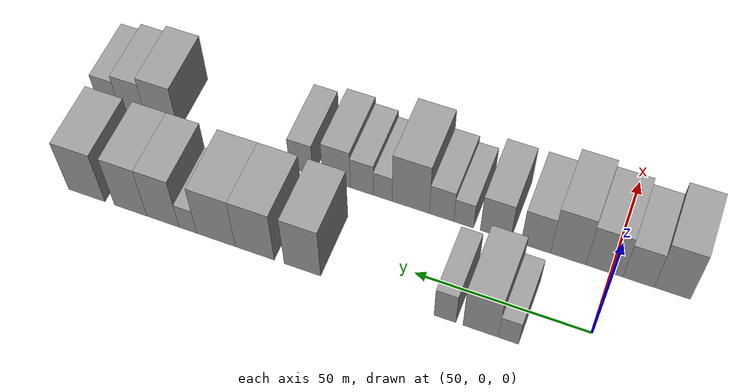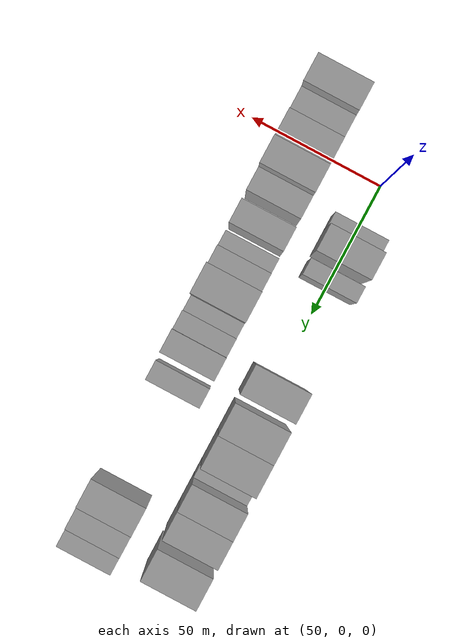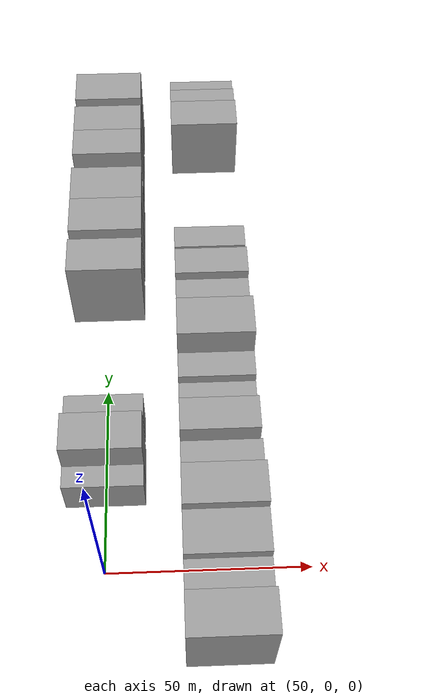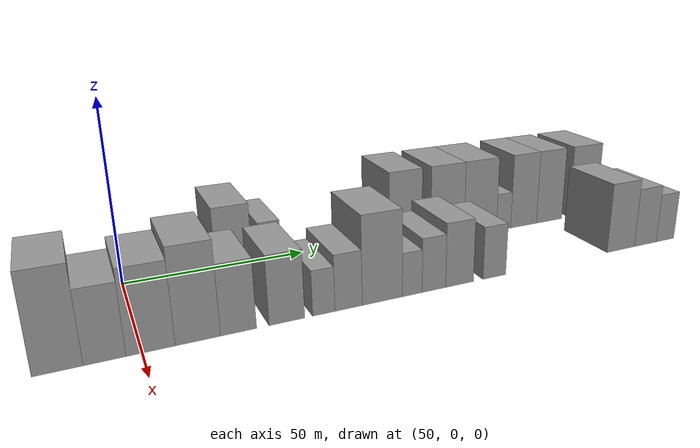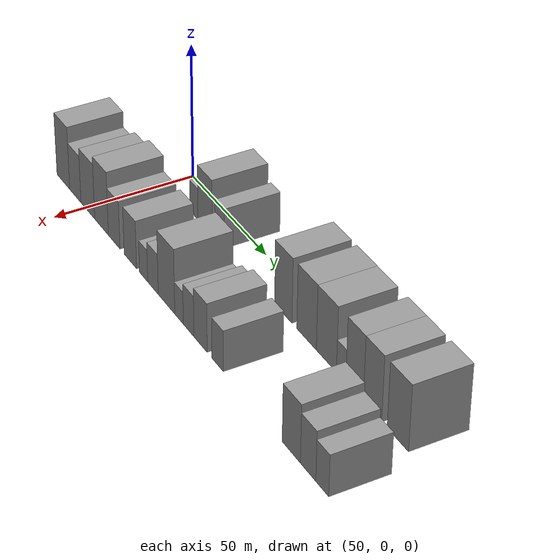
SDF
<sdf version="1.6">
 <world name="default">
  <model name="building_23">
   <static>1</static>
   <pose>50.0000 20.0365 0 0.000000 0.000000 0.000000</pose>
   <link name="link">
    <pose>0 0 6.00 0 0 0</pose>
    <collision name="collision"><geometry><box><size>20.0000 5.6139 12.0000</size></box></geometry></collision>
    <visual name="visual">
     <cast_shadows>0</cast_shadows>
     <geometry><box><size>20.0000 5.6139 12.0000</size></box></geometry>
     <material>
      <script>
       <uri>model://grey_wall/materials/scripts</uri>
       <uri>model://grey_wall/materials/textures</uri>
       <name>vrc/grey_wall</name>
      </script>
     </material>
    </visual>
   </link>
  </model>
  <model name="building_24">
   <static>1</static>
   <pose>50.0000 27.7827 0 0.000000 0.000000 0.000000</pose>
   <link name="link">
    <pose>0 0 10.50 0 0 0</pose>
    <collision name="collision"><geometry><box><size>20.0000 9.8785 21.0000</size></box></geometry></collision>
    <visual name="visual">
     <cast_shadows>0</cast_shadows>
     <geometry><box><size>20.0000 9.8785 21.0000</size></box></geometry>
     <material>
      <script>
       <uri>model://grey_wall/materials/scripts</uri>
       <uri>model://grey_wall/materials/textures</uri>
       <name>vrc/grey_wall</name>
      </script>
     </material>
    </visual>
   </link>
  </model>
  <model name="building_25">
   <static>1</static>
   <pose>50.0000 37.7864 0 0.000000 0.000000 0.000000</pose>
   <link name="link">
    <pose>0 0 7.50 0 0 0</pose>
    <collision name="collision"><geometry><box><size>20.0000 6.1289 15.0000</size></box></geometry></collision>
    <visual name="visual">
     <cast_shadows>0</cast_shadows>
     <geometry><box><size>20.0000 6.1289 15.0000</size></box></geometry>
     <material>
      <script>
       <uri>model://grey_wall/materials/scripts</uri>
       <uri>model://grey_wall/materials/textures</uri>
       <name>vrc/grey_wall</name>
      </script>
     </material>
    </visual>
   </link>
  </model>
  <model name="building_26">
   <static>1</static>
   <pose>50.0000 79.0097 0 0.000000 0.000000 0.000000</pose>
   <link name="link">
    <pose>0 0 12.00 0 0 0</pose>
    <collision name="collision"><geometry><box><size>20.0000 10.7726 24.0000</size></box></geometry></collision>
    <visual name="visual">
     <cast_shadows>0</cast_shadows>
     <geometry><box><size>20.0000 10.7726 24.0000</size></box></geometry>
     <material>
      <script>
       <uri>model://grey_wall/materials/scripts</uri>
       <uri>model://grey_wall/materials/textures</uri>
       <name>vrc/grey_wall</name>
      </script>
     </material>
    </visual>
   </link>
  </model>
  <model name="building_27">
   <static>1</static>
   <pose>50.0000 93.2455 0 0.000000 0.000000 0.000000</pose>
   <link name="link">
    <pose>0 0 12.00 0 0 0</pose>
    <collision name="collision"><geometry><box><size>20.0000 11.6992 24.0000</size></box></geometry></collision>
    <visual name="visual">
     <cast_shadows>0</cast_shadows>
     <geometry><box><size>20.0000 11.6992 24.0000</size></box></geometry>
     <material>
      <script>
       <uri>model://grey_wall/materials/scripts</uri>
       <uri>model://grey_wall/materials/textures</uri>
       <name>vrc/grey_wall</name>
      </script>
     </material>
    </visual>
   </link>
  </model>
  <model name="building_28">
   <static>1</static>
   <pose>50.0000 105.0080 0 0.000000 0.000000 0.000000</pose>
   <link name="link">
    <pose>0 0 12.00 0 0 0</pose>
    <collision name="collision"><geometry><box><size>20.0000 11.8258 24.0000</size></box></geometry></collision>
    <visual name="visual">
     <cast_shadows>0</cast_shadows>
     <geometry><box><size>20.0000 11.8258 24.0000</size></box></geometry>
     <material>
      <script>
       <uri>model://grey_wall/materials/scripts</uri>
       <uri>model://grey_wall/materials/textures</uri>
       <name>vrc/grey_wall</name>
      </script>
     </material>
    </visual>
   </link>
  </model>
  <model name="building_29">
   <static>1</static>
   <pose>50.0000 113.6295 0 0.000000 0.000000 0.000000</pose>
   <link name="link">
    <pose>0 0 6.00 0 0 0</pose>
    <collision name="collision"><geometry><box><size>20.0000 5.4173 12.0000</size></box></geometry></collision>
    <visual name="visual">
     <cast_shadows>0</cast_shadows>
     <geometry><box><size>20.0000 5.4173 12.0000</size></box></geometry>
     <material>
      <script>
       <uri>model://grey_wall/materials/scripts</uri>
       <uri>model://grey_wall/materials/textures</uri>
       <name>vrc/grey_wall</name>
      </script>
     </material>
    </visual>
   </link>
  </model>
  <model name="building_30">
   <static>1</static>
   <pose>50.0000 121.3098 0 0.000000 0.000000 0.000000</pose>
   <link name="link">
    <pose>0 0 12.00 0 0 0</pose>
    <collision name="collision"><geometry><box><size>20.0000 9.9432 24.0000</size></box></geometry></collision>
    <visual name="visual">
     <cast_shadows>0</cast_shadows>
     <geometry><box><size>20.0000 9.9432 24.0000</size></box></geometry>
     <material>
      <script>
       <uri>model://grey_wall/materials/scripts</uri>
       <uri>model://grey_wall/materials/textures</uri>
       <name>vrc/grey_wall</name>
      </script>
     </material>
    </visual>
   </link>
  </model>
  <model name="building_31">
   <static>1</static>
   <pose>50.0000 131.3700 0 0.000000 0.000000 0.000000</pose>
   <link name="link">
    <pose>0 0 12.00 0 0 0</pose>
    <collision name="collision"><geometry><box><size>20.0000 10.1771 24.0000</size></box></geometry></collision>
    <visual name="visual">
     <cast_shadows>0</cast_shadows>
     <geometry><box><size>20.0000 10.1771 24.0000</size></box></geometry>
     <material>
      <script>
       <uri>model://grey_wall/materials/scripts</uri>
       <uri>model://grey_wall/materials/textures</uri>
       <name>vrc/grey_wall</name>
      </script>
     </material>
    </visual>
   </link>
  </model>
  <model name="building_32">
   <static>1</static>
   <pose>50.0000 145.2231 0 0.000000 0.000000 0.000000</pose>
   <link name="link">
    <pose>0 0 12.00 0 0 0</pose>
    <collision name="collision"><geometry><box><size>20.0000 11.5292 24.0000</size></box></geometry></collision>
    <visual name="visual">
     <cast_shadows>0</cast_shadows>
     <geometry><box><size>20.0000 11.5292 24.0000</size></box></geometry>
     <material>
      <script>
       <uri>model://grey_wall/materials/scripts</uri>
       <uri>model://grey_wall/materials/textures</uri>
       <name>vrc/grey_wall</name>
      </script>
     </material>
    </visual>
   </link>
  </model>
  <model name="building_77">
   <static>1</static>
   <pose>79.0000 -17.0609 0 0.000000 0.000000 0.000000</pose>
   <link name="link">
    <pose>0 0 12.00 0 0 0</pose>
    <collision name="collision"><geometry><box><size>20.0000 10.0025 24.0000</size></box></geometry></collision>
    <visual name="visual">
     <cast_shadows>0</cast_shadows>
     <geometry><box><size>20.0000 10.0025 24.0000</size></box></geometry>
     <material>
      <script>
       <uri>model://grey_wall/materials/scripts</uri>
       <uri>model://grey_wall/materials/textures</uri>
       <name>vrc/grey_wall</name>
      </script>
     </material>
    </visual>
   </link>
  </model>
  <model name="building_78">
   <static>1</static>
   <pose>79.0000 -7.7088 0 0.000000 0.000000 0.000000</pose>
   <link name="link">
    <pose>0 0 9.00 0 0 0</pose>
    <collision name="collision"><geometry><box><size>20.0000 8.7016 18.0000</size></box></geometry></collision>
    <visual name="visual">
     <cast_shadows>0</cast_shadows>
     <geometry><box><size>20.0000 8.7016 18.0000</size></box></geometry>
     <material>
      <script>
       <uri>model://grey_wall/materials/scripts</uri>
       <uri>model://grey_wall/materials/textures</uri>
       <name>vrc/grey_wall</name>
      </script>
     </material>
    </visual>
   </link>
  </model>
  <model name="building_79">
   <static>1</static>
   <pose>79.0000 1.8762 0 0.000000 0.000000 0.000000</pose>
   <link name="link">
    <pose>0 0 10.50 0 0 0</pose>
    <collision name="collision"><geometry><box><size>20.0000 10.4684 21.0000</size></box></geometry></collision>
    <visual name="visual">
     <cast_shadows>0</cast_shadows>
     <geometry><box><size>20.0000 10.4684 21.0000</size></box></geometry>
     <material>
      <script>
       <uri>model://grey_wall/materials/scripts</uri>
       <uri>model://grey_wall/materials/textures</uri>
       <name>vrc/grey_wall</name>
      </script>
     </material>
    </visual>
   </link>
  </model>
  <model name="building_80">
   <static>1</static>
   <pose>79.0000 12.1811 0 0.000000 0.000000 0.000000</pose>
   <link name="link">
    <pose>0 0 12.00 0 0 0</pose>
    <collision name="collision"><geometry><box><size>20.0000 10.1414 24.0000</size></box></geometry></collision>
    <visual name="visual">
     <cast_shadows>0</cast_shadows>
     <geometry><box><size>20.0000 10.1414 24.0000</size></box></geometry>
     <material>
      <script>
       <uri>model://grey_wall/materials/scripts</uri>
       <uri>model://grey_wall/materials/textures</uri>
       <name>vrc/grey_wall</name>
      </script>
     </material>
    </visual>
   </link>
  </model>
  <model name="building_81">
   <static>1</static>
   <pose>79.0000 21.4870 0 0.000000 0.000000 0.000000</pose>
   <link name="link">
    <pose>0 0 9.00 0 0 0</pose>
    <collision name="collision"><geometry><box><size>20.0000 8.4704 18.0000</size></box></geometry></collision>
    <visual name="visual">
     <cast_shadows>0</cast_shadows>
     <geometry><box><size>20.0000 8.4704 18.0000</size></box></geometry>
     <material>
      <script>
       <uri>model://grey_wall/materials/scripts</uri>
       <uri>model://grey_wall/materials/textures</uri>
       <name>vrc/grey_wall</name>
      </script>
     </material>
    </visual>
   </link>
  </model>
  <model name="building_82">
   <static>1</static>
   <pose>79.0000 33.1528 0 0.000000 0.000000 0.000000</pose>
   <link name="link">
    <pose>0 0 9.00 0 0 0</pose>
    <collision name="collision"><geometry><box><size>20.0000 8.8611 18.0000</size></box></geometry></collision>
    <visual name="visual">
     <cast_shadows>0</cast_shadows>
     <geometry><box><size>20.0000 8.8611 18.0000</size></box></geometry>
     <material>
      <script>
       <uri>model://grey_wall/materials/scripts</uri>
       <uri>model://grey_wall/materials/textures</uri>
       <name>vrc/grey_wall</name>
      </script>
     </material>
    </visual>
   </link>
  </model>
  <model name="building_83">
   <static>1</static>
   <pose>79.0000 42.4728 0 0.000000 0.000000 0.000000</pose>
   <link name="link">
    <pose>0 0 6.00 0 0 0</pose>
    <collision name="collision"><geometry><box><size>20.0000 5.7789 12.0000</size></box></geometry></collision>
    <visual name="visual">
     <cast_shadows>0</cast_shadows>
     <geometry><box><size>20.0000 5.7789 12.0000</size></box></geometry>
     <material>
      <script>
       <uri>model://grey_wall/materials/scripts</uri>
       <uri>model://grey_wall/materials/textures</uri>
       <name>vrc/grey_wall</name>
      </script>
     </material>
    </visual>
   </link>
  </model>
  <model name="building_84">
   <static>1</static>
   <pose>79.0000 48.9953 0 0.000000 0.000000 0.000000</pose>
   <link name="link">
    <pose>0 0 7.50 0 0 0</pose>
    <collision name="collision"><geometry><box><size>20.0000 7.2660 15.0000</size></box></geometry></collision>
    <visual name="visual">
     <cast_shadows>0</cast_shadows>
     <geometry><box><size>20.0000 7.2660 15.0000</size></box></geometry>
     <material>
      <script>
       <uri>model://grey_wall/materials/scripts</uri>
       <uri>model://grey_wall/materials/textures</uri>
       <name>vrc/grey_wall</name>
      </script>
     </material>
    </visual>
   </link>
  </model>
  <model name="building_85">
   <static>1</static>
   <pose>79.0000 58.1985 0 0.000000 0.000000 0.000000</pose>
   <link name="link">
    <pose>0 0 12.00 0 0 0</pose>
    <collision name="collision"><geometry><box><size>20.0000 11.1405 24.0000</size></box></geometry></collision>
    <visual name="visual">
     <cast_shadows>0</cast_shadows>
     <geometry><box><size>20.0000 11.1405 24.0000</size></box></geometry>
     <material>
      <script>
       <uri>model://grey_wall/materials/scripts</uri>
       <uri>model://grey_wall/materials/textures</uri>
       <name>vrc/grey_wall</name>
      </script>
     </material>
    </visual>
   </link>
  </model>
  <model name="building_86">
   <static>1</static>
   <pose>79.0000 66.6175 0 0.000000 0.000000 0.000000</pose>
   <link name="link">
    <pose>0 0 6.00 0 0 0</pose>
    <collision name="collision"><geometry><box><size>20.0000 5.6974 12.0000</size></box></geometry></collision>
    <visual name="visual">
     <cast_shadows>0</cast_shadows>
     <geometry><box><size>20.0000 5.6974 12.0000</size></box></geometry>
     <material>
      <script>
       <uri>model://grey_wall/materials/scripts</uri>
       <uri>model://grey_wall/materials/textures</uri>
       <name>vrc/grey_wall</name>
      </script>
     </material>
    </visual>
   </link>
  </model>
  <model name="building_87">
   <static>1</static>
   <pose>79.0000 72.9470 0 0.000000 0.000000 0.000000</pose>
   <link name="link">
    <pose>0 0 7.50 0 0 0</pose>
    <collision name="collision"><geometry><box><size>20.0000 6.9616 15.0000</size></box></geometry></collision>
    <visual name="visual">
     <cast_shadows>0</cast_shadows>
     <geometry><box><size>20.0000 6.9616 15.0000</size></box></geometry>
     <material>
      <script>
       <uri>model://grey_wall/materials/scripts</uri>
       <uri>model://grey_wall/materials/textures</uri>
       <name>vrc/grey_wall</name>
      </script>
     </material>
    </visual>
   </link>
  </model>
  <model name="building_88">
   <static>1</static>
   <pose>79.0000 80.6842 0 0.000000 0.000000 0.000000</pose>
   <link name="link">
    <pose>0 0 9.00 0 0 0</pose>
    <collision name="collision"><geometry><box><size>20.0000 8.5128 18.0000</size></box></geometry></collision>
    <visual name="visual">
     <cast_shadows>0</cast_shadows>
     <geometry><box><size>20.0000 8.5128 18.0000</size></box></geometry>
     <material>
      <script>
       <uri>model://grey_wall/materials/scripts</uri>
       <uri>model://grey_wall/materials/textures</uri>
       <name>vrc/grey_wall</name>
      </script>
     </material>
    </visual>
   </link>
  </model>
  <model name="building_89">
   <static>1</static>
   <pose>79.0000 91.5619 0 0.000000 0.000000 0.000000</pose>
   <link name="link">
    <pose>0 0 7.50 0 0 0</pose>
    <collision name="collision"><geometry><box><size>20.0000 7.2427 15.0000</size></box></geometry></collision>
    <visual name="visual">
     <cast_shadows>0</cast_shadows>
     <geometry><box><size>20.0000 7.2427 15.0000</size></box></geometry>
     <material>
      <script>
       <uri>model://grey_wall/materials/scripts</uri>
       <uri>model://grey_wall/materials/textures</uri>
       <name>vrc/grey_wall</name>
      </script>
     </material>
    </visual>
   </link>
  </model>
  <model name="building_90">
   <static>1</static>
   <pose>79.0000 135.7607 0 0.000000 0.000000 0.000000</pose>
   <link name="link">
    <pose>0 0 10.50 0 0 0</pose>
    <collision name="collision"><geometry><box><size>20.0000 10.3850 21.0000</size></box></geometry></collision>
    <visual name="visual">
     <cast_shadows>0</cast_shadows>
     <geometry><box><size>20.0000 10.3850 21.0000</size></box></geometry>
     <material>
      <script>
       <uri>model://grey_wall/materials/scripts</uri>
       <uri>model://grey_wall/materials/textures</uri>
       <name>vrc/grey_wall</name>
      </script>
     </material>
    </visual>
   </link>
  </model>
  <model name="building_91">
   <static>1</static>
   <pose>79.0000 145.2522 0 0.000000 0.000000 0.000000</pose>
   <link name="link">
    <pose>0 0 9.00 0 0 0</pose>
    <collision name="collision"><geometry><box><size>20.0000 8.5981 18.0000</size></box></geometry></collision>
    <visual name="visual">
     <cast_shadows>0</cast_shadows>
     <geometry><box><size>20.0000 8.5981 18.0000</size></box></geometry>
     <material>
      <script>
       <uri>model://grey_wall/materials/scripts</uri>
       <uri>model://grey_wall/materials/textures</uri>
       <name>vrc/grey_wall</name>
      </script>
     </material>
    </visual>
   </link>
  </model>
  <model name="building_92">
   <static>1</static>
   <pose>79.0000 153.1192 0 0.000000 0.000000 0.000000</pose>
   <link name="link">
    <pose>0 0 7.50 0 0 0</pose>
    <collision name="collision"><geometry><box><size>20.0000 7.1359 15.0000</size></box></geometry></collision>
    <visual name="visual">
     <cast_shadows>0</cast_shadows>
     <geometry><box><size>20.0000 7.1359 15.0000</size></box></geometry>
     <material>
      <script>
       <uri>model://grey_wall/materials/scripts</uri>
       <uri>model://grey_wall/materials/textures</uri>
       <name>vrc/grey_wall</name>
      </script>
     </material>
    </visual>
   </link>
  </model>
 </world>
</sdf>
